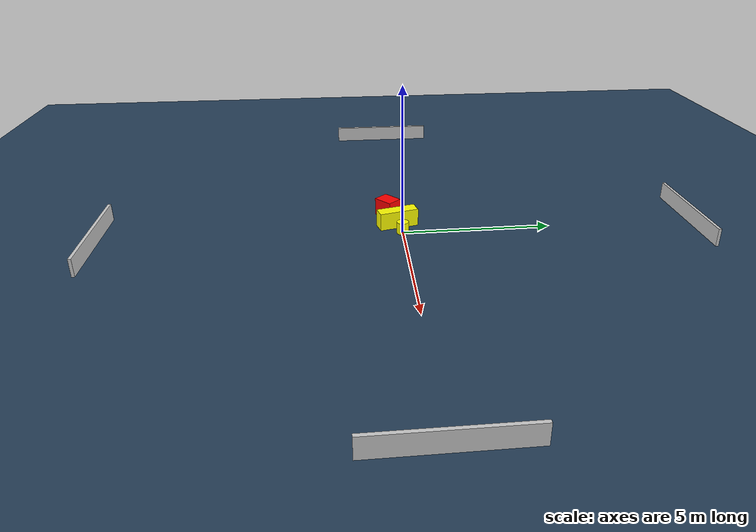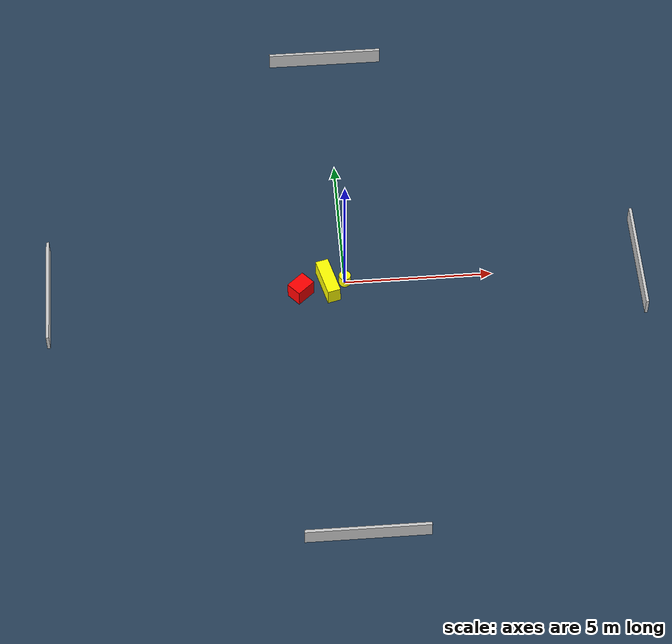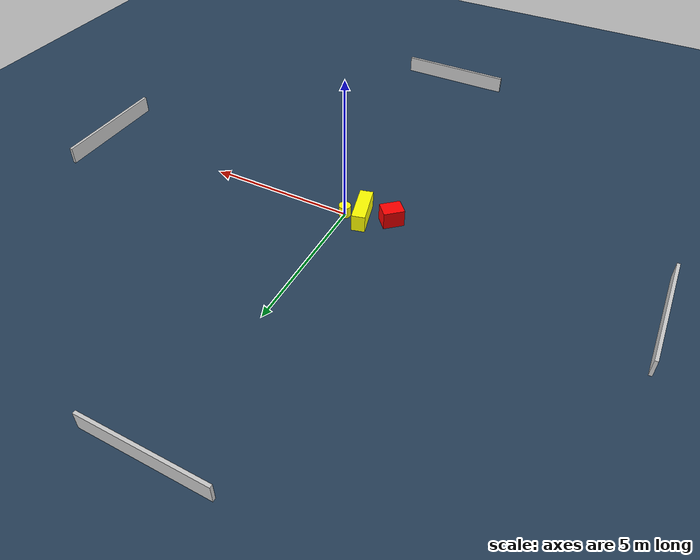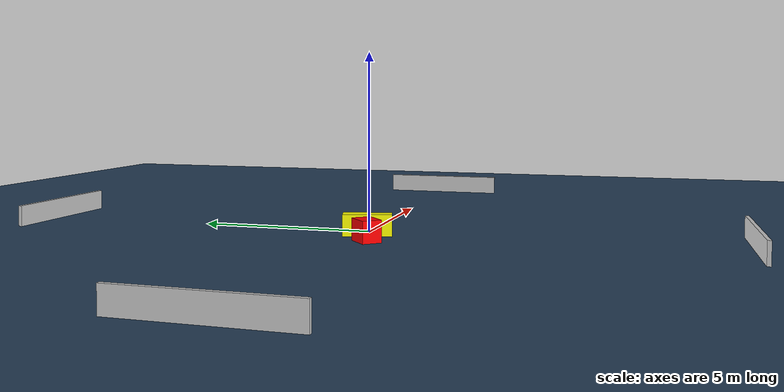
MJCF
<?xml version="1.0" ?>
<mujoco model="generated_environment">
  <option timestep="0.01" integrator="RK4" cone="elliptic"/>
  <default>
    <geom density="1"/>
  </default>
  <asset>
    <texture builtin="gradient" height="3072" name="skybox" rgb1="0.3 0.5 0.7" rgb2="0 0 0" type="skybox" width="512"/>
    <texture builtin="checker" height="300" name="groundplane" rgb1="0.2 0.3 0.4" rgb2="0.1 0.2 0.3" type="2d" width="300"/>
    <material name="groundplane" reflectance="0.2" texrepeat="5 5" texture="groundplane"/>
  </asset>
  <worldbody>
    <light dir="0 0 -1" directional="true" pos="0 0 1.5"/>
    <geom condim="3" friction="0.5 0.005 0.001" material="groundplane" name="floor" pos="0 0 0" size="0 0 0.05" type="plane"/>
    <body name="walls">
      <geom name="wall_1" condim="4" pos="-10.0 0.0 0.3" rgba="0.800000011920929 0.800000011920929 0.800000011920929 1.0" size="0.05 2.0 0.3" type="box"/>
      <geom name="wall_2" condim="4" pos="10.0 0.0 0.3" rgba="0.800000011920929 0.800000011920929 0.800000011920929 1.0" size="0.05 2.0 0.3" type="box"/>
      <geom name="wall_3" condim="4" pos="0.0 -10.0 0.3" rgba="0.800000011920929 0.800000011920929 0.800000011920929 1.0" size="2.0 0.05 0.3" type="box"/>
      <geom name="wall_4" condim="4" pos="0.0 10.0 0.3" rgba="0.800000011920929 0.800000011920929 0.800000011920929 1.0" size="2.0 0.05 0.3" type="box"/>
    </body>
    <body name="robot">
      <joint name="joint_x" type="slide" pos="0 0 0" axis="1 0 0"/>
      <joint name="joint_y" type="slide" pos="0 0 0" axis="0 1 0"/>
      <geom name="robot" type="cylinder" pos="0.0 0.0 0.2" size="0.2 0.2 0.0" mass="5.0" friction="1.0 0.005 0.0001" condim="4" rgba="1.0 1.0 0.0 1.0"/>
    </body>
    <body name="obstacle_1_movable">
      <geom name="obstacle_1_movable" condim="4" pos="-0.5783934401624051 -0.1239860132283719 0.3" euler="0 0 104.46250522440157" friction="0.0 0.005 0.001" rgba="1.0 1.0 0.0 1.0" size="0.6728808516943514 0.22181175322639926 0.3" type="box" mass="0.1"/>
      <joint type="free"/>
    </body>
    <body name="obstacle_2_static">
      <geom name="obstacle_2_static" condim="4" pos="-1.509472434851368 -0.3783428349389139 0.3" euler="0 0 311.61270094864057" friction="0.0 0.005 0.001" rgba="1.0 0.0 0.0 1.0" size="0.27305681390288444 0.3507519923589113 0.3" type="box"/>
    </body>
  </worldbody>
  <actuator>
    <motor name="actuator_x" joint="joint_x" gear="1" ctrlrange="-1 1"/>
    <motor name="actuator_y" joint="joint_y" gear="1" ctrlrange="-1 1"/>
  </actuator>
</mujoco>
